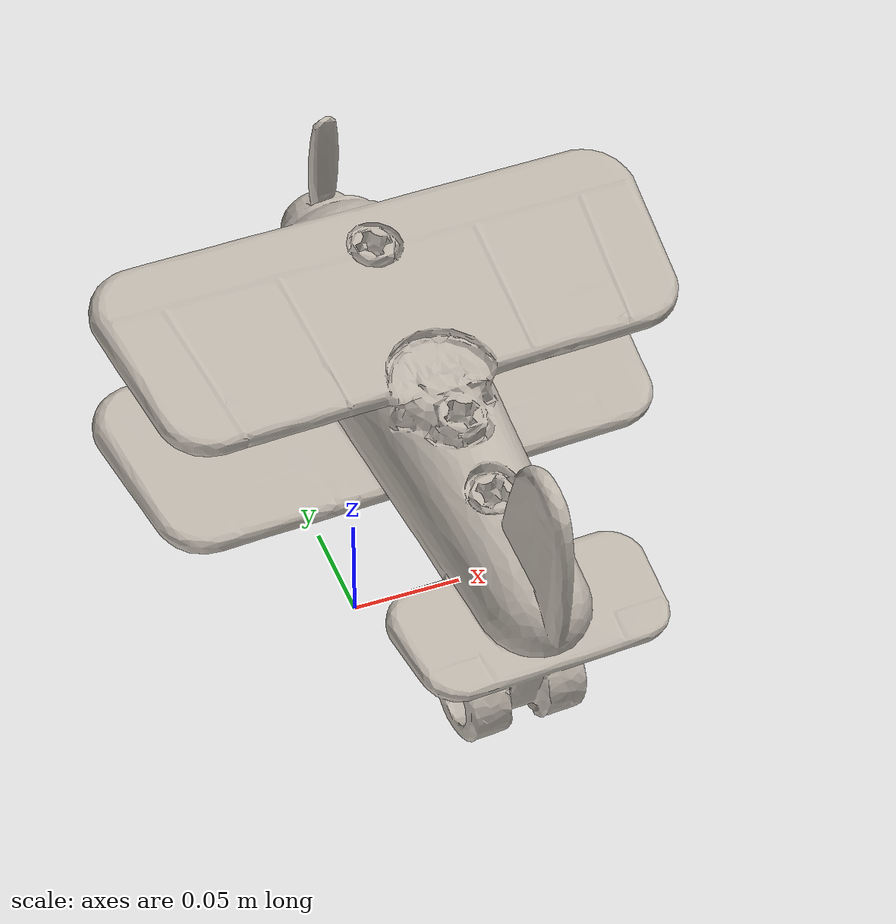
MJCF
<mujoco model="airplane_a">
  <compiler angle="radian" meshdir="assets" texturedir="assets"/>
    <default>
        <default class="ycb_col">
            <geom contype="1" conaffinity="1" group="3" rgba=".4 .5 .6 1"/>
        </default>
        <default class="ycb_viz">
            <geom contype="0" conaffinity="0" type="mesh" mass="0"/>
        </default>
    </default>
  <asset>
    <texture type="2d" name="a_toy_airplane_tex" file="texture_map.png"/>
    <material name="a_toy_airplane_mat" texture="a_toy_airplane_tex" specular="0.5" shininess="0.5"/>
    <mesh file="textured.obj" name="a_toy_airplane"/>
    <mesh file="textured_collision_0.obj" name="a_toy_airplane_collision_0"/>
    <mesh file="textured_collision_1.obj" name="a_toy_airplane_collision_1"/>
    <mesh file="textured_collision_2.obj" name="a_toy_airplane_collision_2"/>
    <mesh file="textured_collision_3.obj" name="a_toy_airplane_collision_3"/>
    <mesh file="textured_collision_4.obj" name="a_toy_airplane_collision_4"/>
    <mesh file="textured_collision_5.obj" name="a_toy_airplane_collision_5"/>
    <mesh file="textured_collision_6.obj" name="a_toy_airplane_collision_6"/>
    <mesh file="textured_collision_7.obj" name="a_toy_airplane_collision_7"/>
    <mesh file="textured_collision_8.obj" name="a_toy_airplane_collision_8"/>
    <mesh file="textured_collision_9.obj" name="a_toy_airplane_collision_9"/>
    <mesh file="textured_collision_10.obj" name="a_toy_airplane_collision_10"/>
    <mesh file="textured_collision_11.obj" name="a_toy_airplane_collision_11"/>
    <mesh file="textured_collision_12.obj" name="a_toy_airplane_collision_12"/>
    <mesh file="textured_collision_13.obj" name="a_toy_airplane_collision_13"/>
    <mesh file="textured_collision_14.obj" name="a_toy_airplane_collision_14"/>
    <mesh file="textured_collision_15.obj" name="a_toy_airplane_collision_15"/>
    <mesh file="textured_collision_16.obj" name="a_toy_airplane_collision_16"/>
    <mesh file="textured_collision_17.obj" name="a_toy_airplane_collision_17"/>
    <mesh file="textured_collision_18.obj" name="a_toy_airplane_collision_18"/>
    <mesh file="textured_collision_19.obj" name="a_toy_airplane_collision_19"/>
    <mesh file="textured_collision_20.obj" name="a_toy_airplane_collision_20"/>
    <mesh file="textured_collision_21.obj" name="a_toy_airplane_collision_21"/>
    <mesh file="textured_collision_22.obj" name="a_toy_airplane_collision_22"/>
    <mesh file="textured_collision_23.obj" name="a_toy_airplane_collision_23"/>
    <mesh file="textured_collision_24.obj" name="a_toy_airplane_collision_24"/>
    <mesh file="textured_collision_25.obj" name="a_toy_airplane_collision_25"/>
    <mesh file="textured_collision_26.obj" name="a_toy_airplane_collision_26"/>
    <mesh file="textured_collision_27.obj" name="a_toy_airplane_collision_27"/>
    <mesh file="textured_collision_28.obj" name="a_toy_airplane_collision_28"/>
    <mesh file="textured_collision_29.obj" name="a_toy_airplane_collision_29"/>
    <mesh file="textured_collision_30.obj" name="a_toy_airplane_collision_30"/>
  </asset>
  <worldbody>
      <geom material="a_toy_airplane_mat" mesh="a_toy_airplane" class="ycb_viz"/>
      <geom mesh="a_toy_airplane_collision_0" class="ycb_col" conaffinity="1" condim="4" friction="0.1 0.1 0.1" mass="0.00199921976347196" rgba="1 1 1 1" solimp="0.99 0.99 0.01" solref=".001 0.1" type="mesh" group="3"/>
      <geom mesh="a_toy_airplane_collision_1" class="ycb_col" conaffinity="1" condim="4" friction="0.1 0.1 0.1" mass="0.011880667494009496" rgba="1 1 1 1" solimp="0.99 0.99 0.01" solref=".001 0.1" type="mesh" group="3"/>
      <geom mesh="a_toy_airplane_collision_2" class="ycb_col" conaffinity="1" condim="4" friction="0.1 0.1 0.1" mass="0.009706050460511201" rgba="1 1 1 1" solimp="0.99 0.99 0.01" solref=".001 0.1" type="mesh" group="3"/>
      <geom mesh="a_toy_airplane_collision_3" class="ycb_col" conaffinity="1" condim="4" friction="0.1 0.1 0.1" mass="0.015291161903901422" rgba="1 1 1 1" solimp="0.99 0.99 0.01" solref=".001 0.1" type="mesh" group="3"/>
      <geom mesh="a_toy_airplane_collision_4" class="ycb_col" conaffinity="1" condim="4" friction="0.1 0.1 0.1" mass="0.02859204064707744" rgba="1 1 1 1" solimp="0.99 0.99 0.01" solref=".001 0.1" type="mesh" group="3"/>
      <geom mesh="a_toy_airplane_collision_5" class="ycb_col" conaffinity="1" condim="4" friction="0.1 0.1 0.1" mass="0.03302363579047843" rgba="1 1 1 1" solimp="0.99 0.99 0.01" solref=".001 0.1" type="mesh" group="3"/>
      <geom mesh="a_toy_airplane_collision_6" class="ycb_col" conaffinity="1" condim="4" friction="0.1 0.1 0.1" mass="0.016574660254923466" rgba="1 1 1 1" solimp="0.99 0.99 0.01" solref=".001 0.1" type="mesh" group="3"/>
      <geom mesh="a_toy_airplane_collision_7" class="ycb_col" conaffinity="1" condim="4" friction="0.1 0.1 0.1" mass="0.000841178261386035" rgba="1 1 1 1" solimp="0.99 0.99 0.01" solref=".001 0.1" type="mesh" group="3"/>
      <geom mesh="a_toy_airplane_collision_8" class="ycb_col" conaffinity="1" condim="4" friction="0.1 0.1 0.1" mass="0.004141772164093229" rgba="1 1 1 1" solimp="0.99 0.99 0.01" solref=".001 0.1" type="mesh" group="3"/>
      <geom mesh="a_toy_airplane_collision_9" class="ycb_col" conaffinity="1" condim="4" friction="0.1 0.1 0.1" mass="0.031093226017885615" rgba="1 1 1 1" solimp="0.99 0.99 0.01" solref=".001 0.1" type="mesh" group="3"/>
      <geom mesh="a_toy_airplane_collision_10" class="ycb_col" conaffinity="1" condim="4" friction="0.1 0.1 0.1" mass="0.011790866682326156" rgba="1 1 1 1" solimp="0.99 0.99 0.01" solref=".001 0.1" type="mesh" group="3"/>
      <geom mesh="a_toy_airplane_collision_11" class="ycb_col" conaffinity="1" condim="4" friction="0.1 0.1 0.1" mass="0.005944165552139748" rgba="1 1 1 1" solimp="0.99 0.99 0.01" solref=".001 0.1" type="mesh" group="3"/>
      <geom mesh="a_toy_airplane_collision_12" class="ycb_col" conaffinity="1" condim="4" friction="0.1 0.1 0.1" mass="0.013605175474164637" rgba="1 1 1 1" solimp="0.99 0.99 0.01" solref=".001 0.1" type="mesh" group="3"/>
      <geom mesh="a_toy_airplane_collision_13" class="ycb_col" conaffinity="1" condim="4" friction="0.1 0.1 0.1" mass="0.09075697304211995" rgba="1 1 1 1" solimp="0.99 0.99 0.01" solref=".001 0.1" type="mesh" group="3"/>
      <geom mesh="a_toy_airplane_collision_14" class="ycb_col" conaffinity="1" condim="4" friction="0.1 0.1 0.1" mass="0.03312522684115705" rgba="1 1 1 1" solimp="0.99 0.99 0.01" solref=".001 0.1" type="mesh" group="3"/>
      <geom mesh="a_toy_airplane_collision_15" class="ycb_col" conaffinity="1" condim="4" friction="0.1 0.1 0.1" mass="0.00047061685895455276" rgba="1 1 1 1" solimp="0.99 0.99 0.01" solref=".001 0.1" type="mesh" group="3"/>
      <geom mesh="a_toy_airplane_collision_16" class="ycb_col" conaffinity="1" condim="4" friction="0.1 0.1 0.1" mass="0.027265933626464407" rgba="1 1 1 1" solimp="0.99 0.99 0.01" solref=".001 0.1" type="mesh" group="3"/>
      <geom mesh="a_toy_airplane_collision_17" class="ycb_col" conaffinity="1" condim="4" friction="0.1 0.1 0.1" mass="0.00034559488418922635" rgba="1 1 1 1" solimp="0.99 0.99 0.01" solref=".001 0.1" type="mesh" group="3"/>
      <geom mesh="a_toy_airplane_collision_18" class="ycb_col" conaffinity="1" condim="4" friction="0.1 0.1 0.1" mass="0.0004466900448888974" rgba="1 1 1 1" solimp="0.99 0.99 0.01" solref=".001 0.1" type="mesh" group="3"/>
      <geom mesh="a_toy_airplane_collision_19" class="ycb_col" conaffinity="1" condim="4" friction="0.1 0.1 0.1" mass="0.025111429762833183" rgba="1 1 1 1" solimp="0.99 0.99 0.01" solref=".001 0.1" type="mesh" group="3"/>
      <geom mesh="a_toy_airplane_collision_20" class="ycb_col" conaffinity="1" condim="4" friction="0.1 0.1 0.1" mass="0.001737914098643493" rgba="1 1 1 1" solimp="0.99 0.99 0.01" solref=".001 0.1" type="mesh" group="3"/>
      <geom mesh="a_toy_airplane_collision_21" class="ycb_col" conaffinity="1" condim="4" friction="0.1 0.1 0.1" mass="0.013244229039514334" rgba="1 1 1 1" solimp="0.99 0.99 0.01" solref=".001 0.1" type="mesh" group="3"/>
      <geom mesh="a_toy_airplane_collision_22" class="ycb_col" conaffinity="1" condim="4" friction="0.1 0.1 0.1" mass="0.06953690062970216" rgba="1 1 1 1" solimp="0.99 0.99 0.01" solref=".001 0.1" type="mesh" group="3"/>
      <geom mesh="a_toy_airplane_collision_23" class="ycb_col" conaffinity="1" condim="4" friction="0.1 0.1 0.1" mass="0.012482116307834133" rgba="1 1 1 1" solimp="0.99 0.99 0.01" solref=".001 0.1" type="mesh" group="3"/>
      <geom mesh="a_toy_airplane_collision_24" class="ycb_col" conaffinity="1" condim="4" friction="0.1 0.1 0.1" mass="0.017800064359271204" rgba="1 1 1 1" solimp="0.99 0.99 0.01" solref=".001 0.1" type="mesh" group="3"/>
      <geom mesh="a_toy_airplane_collision_25" class="ycb_col" conaffinity="1" condim="4" friction="0.1 0.1 0.1" mass="0.014752973122840156" rgba="1 1 1 1" solimp="0.99 0.99 0.01" solref=".001 0.1" type="mesh" group="3"/>
      <geom mesh="a_toy_airplane_collision_26" class="ycb_col" conaffinity="1" condim="4" friction="0.1 0.1 0.1" mass="0.023814786341046026" rgba="1 1 1 1" solimp="0.99 0.99 0.01" solref=".001 0.1" type="mesh" group="3"/>
      <geom mesh="a_toy_airplane_collision_27" class="ycb_col" conaffinity="1" condim="4" friction="0.1 0.1 0.1" mass="0.03239333952716602" rgba="1 1 1 1" solimp="0.99 0.99 0.01" solref=".001 0.1" type="mesh" group="3"/>
      <geom mesh="a_toy_airplane_collision_28" class="ycb_col" conaffinity="1" condim="4" friction="0.1 0.1 0.1" mass="0.013985063786537986" rgba="1 1 1 1" solimp="0.99 0.99 0.01" solref=".001 0.1" type="mesh" group="3"/>
      <geom mesh="a_toy_airplane_collision_29" class="ycb_col" conaffinity="1" condim="4" friction="0.1 0.1 0.1" mass="0.0071539386832537005" rgba="1 1 1 1" solimp="0.99 0.99 0.01" solref=".001 0.1" type="mesh" group="3"/>
      <geom mesh="a_toy_airplane_collision_30" class="ycb_col" conaffinity="1" condim="4" friction="0.1 0.1 0.1" mass="0.001092388577214633" rgba="1 1 1 1" solimp="0.99 0.99 0.01" solref=".001 0.1" type="mesh" group="3"/>
  </worldbody>
</mujoco>
